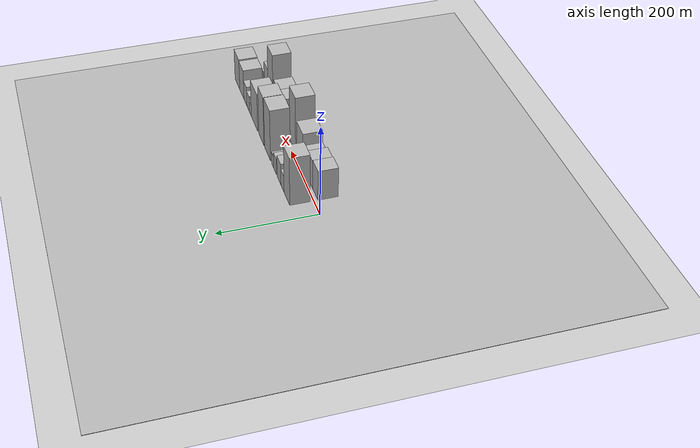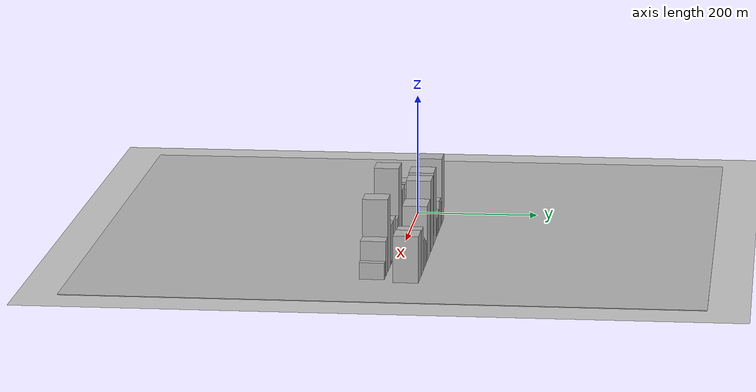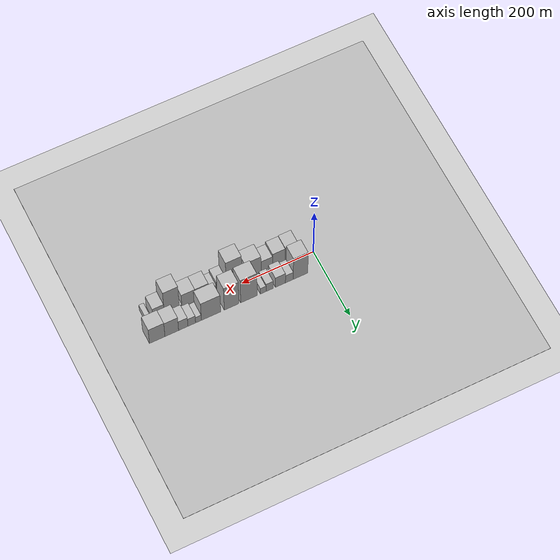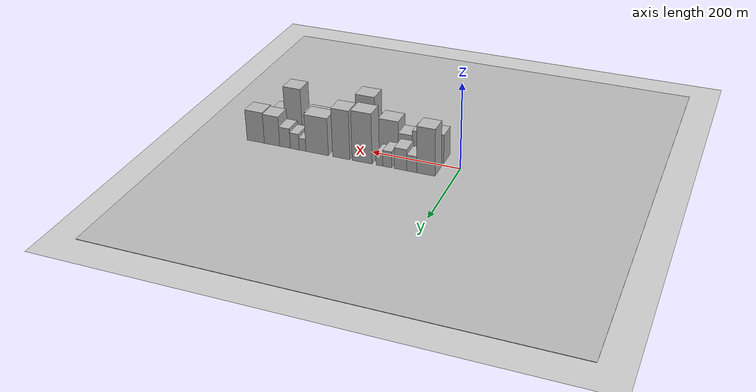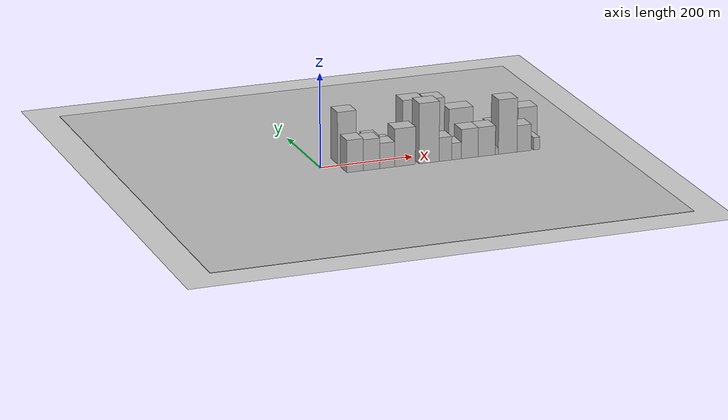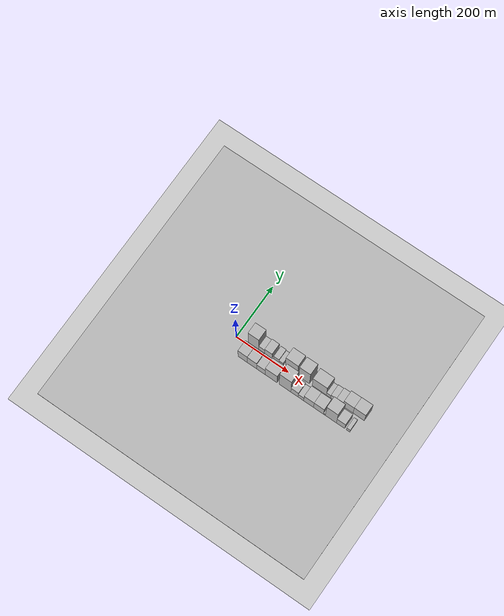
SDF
<?xml version="1.0" encoding="utf-8"?>

<sdf version="1.6">

   <world name="default">

      <gui fullscreen="0">

         <camera name="user_camera">

            <pose>-15 0 4.57585 0 0 0</pose>

            <view_controller>orbit</view_controller>

         </camera>

      </gui>

      <scene>

         <sky>

           <clouds>

             <speed>12</speed>

           </clouds>

         </sky>

         <ambient>0.4 0.4 0.4 1</ambient>

         <background>0.7 0.7 0.7 1</background>

         <shadows>1</shadows>

      </scene>

      <gravity>0 0 -9.8066</gravity>

      <magnetic_field>6e-06 2.3e-05 -4.2e-05</magnetic_field>

      <physics default="0" name="default_physics" type="ode">

         <ode>

            <solver>

               <type>quick</type>

               <iters>10</iters>

               <sor>1.0</sor>

               <use_dynamic_moi_rescaling>0</use_dynamic_moi_rescaling>

            </solver>

            <constraints>

               <cfm>0</cfm>

               <erp>0.2</erp>

               <contact_max_correcting_vel>100</contact_max_correcting_vel>

               <contact_surface_layer>0.001</contact_surface_layer>

            </constraints>

         </ode>

         <max_step_size>0.004</max_step_size>

         <real_time_factor>1</real_time_factor>

         <real_time_update_rate>250</real_time_update_rate>

      </physics>

      <light name="sun" type="directional">

         <cast_shadows>1</cast_shadows>

         <pose>0 0 10 0 0 0</pose>

         <diffuse>0.8 0.8 0.8 1</diffuse>

         <specular>0.2 0.2 0.2 1</specular>

         <attenuation>

            <range>1000</range>

            <constant>0.9</constant>

            <linear>0.01</linear>

            <quadratic>0.001</quadratic>

         </attenuation>

         <direction>-0.5 0.1 -0.9</direction>

      </light>

      <include>

         <name>ground_plane_1</name>

         <uri>model://HANNAS_ground_plane</uri>

         <pose>0 0 0  0 0 0</pose>

      </include>

      <include>

         <name>ground_plane_2</name>

         <uri>model://HANNAS_ground_plane</uri>

         <pose>100 0 0  0 0 0</pose>

      </include>

      <model name="building_1">

         <static>1</static>

         <pose frame="">60.2387 27.5000 0 0.000000 0.000000 1.570796</pose>

         <link name="link">

            <pose frame="">0 0 55.50 0 0 0</pose>

            <collision name="collision">

               <geometry>

                  <box>

                     <size>40.0000 40.4774 111.0000</size>

                  </box>

               </geometry>

               <max_contacts>10</max_contacts>

               <surface>

                  <contact>

                     <ode/>

                  </contact>

                  <bounce/>

                  <friction>

                     <torsional>

                        <ode/>

                     </torsional>

                     <ode/>

                  </friction>

               </surface>

            </collision>

            <visual name="visual">

               <cast_shadows>0</cast_shadows>

               <geometry>

                  <box>

                     <size>40.0000 40.4774 111.0000</size>

                  </box>

               </geometry>

               <material>

                  <script>

                     <uri>model://HANNAS_wall/materials/scripts</uri>

                     <uri>model://HANNAS_wall/materials/textures</uri>

                     <name>vrc/HANNAS_wall</name>

                  </script>

               </material>

            </visual>

            <self_collide>0</self_collide>

            <enable_wind>0</enable_wind>

            <kinematic>0</kinematic>

         </link>

      </model>

      <model name="building_2">

         <static>1</static>

         <pose frame="">91.4213 27.5000 0 0.000000 0.000000 1.570796</pose>

         <link name="link">

            <pose frame="">0 0 19.50 0 0 0</pose>

            <collision name="collision">

               <geometry>

                  <box>

                     <size>40.0000 21.8878 39.0000</size>

                  </box>

               </geometry>

               <max_contacts>10</max_contacts>

               <surface>

                  <contact>

                     <ode/>

                  </contact>

                  <bounce/>

                  <friction>

                     <torsional>

                        <ode/>

                     </torsional>

                     <ode/>

                  </friction>

               </surface>

            </collision>

            <visual name="visual">

               <cast_shadows>0</cast_shadows>

               <geometry>

                  <box>

                     <size>40.0000 21.8878 39.0000</size>

                  </box>

               </geometry>

               <material>

                  <script>

                     <uri>model://HANNAS_wall/materials/scripts</uri>

                     <uri>model://HANNAS_wall/materials/textures</uri>

                     <name>vrc/HANNAS_wall</name>

                  </script>

               </material>

            </visual>

            <self_collide>0</self_collide>

            <enable_wind>0</enable_wind>

            <kinematic>0</kinematic>

         </link>

      </model>

      <model name="building_3">

         <static>1</static>

         <pose frame="">116.3525 27.5000 0 0.000000 0.000000 1.570796</pose>

         <link name="link">

            <pose frame="">0 0 25.50 0 0 0</pose>

            <collision name="collision">

               <geometry>

                  <box>

                     <size>40.0000 27.9747 51.0000</size>

                  </box>

               </geometry>

               <max_contacts>10</max_contacts>

               <surface>

                  <contact>

                     <ode/>

                  </contact>

                  <bounce/>

                  <friction>

                     <torsional>

                        <ode/>

                     </torsional>

                     <ode/>

                  </friction>

               </surface>

            </collision>

            <visual name="visual">

               <cast_shadows>0</cast_shadows>

               <geometry>

                  <box>

                     <size>40.0000 27.9747 51.0000</size>

                  </box>

               </geometry>

               <material>

                  <script>

                     <uri>model://HANNAS_wall/materials/scripts</uri>

                     <uri>model://HANNAS_wall/materials/textures</uri>

                     <name>vrc/HANNAS_wall</name>

                  </script>

               </material>

            </visual>

            <self_collide>0</self_collide>

            <enable_wind>0</enable_wind>

            <kinematic>0</kinematic>

         </link>

      </model>

      <model name="building_4">

         <static>1</static>

         <pose frame="">146.3809 27.5000 0 0.000000 0.000000 1.570796</pose>

         <link name="link">

            <pose frame="">0 0 19.50 0 0 0</pose>

            <collision name="collision">

               <geometry>

                  <box>

                     <size>40.0000 20.0820 39.0000</size>

                  </box>

               </geometry>

               <max_contacts>10</max_contacts>

               <surface>

                  <contact>

                     <ode/>

                  </contact>

                  <bounce/>

                  <friction>

                     <torsional>

                        <ode/>

                     </torsional>

                     <ode/>

                  </friction>

               </surface>

            </collision>

            <visual name="visual">

               <cast_shadows>0</cast_shadows>

               <geometry>

                  <box>

                     <size>40.0000 20.0820 39.0000</size>

                  </box>

               </geometry>

               <material>

                  <script>

                     <uri>model://HANNAS_wall/materials/scripts</uri>

                     <uri>model://HANNAS_wall/materials/textures</uri>

                     <name>vrc/HANNAS_wall</name>

                  </script>

               </material>

            </visual>

            <self_collide>0</self_collide>

            <enable_wind>0</enable_wind>

            <kinematic>0</kinematic>

         </link>

      </model>

      <model name="building_5">

         <static>1</static>

         <pose frame="">164.1756 27.5000 0 0.000000 0.000000 1.570796</pose>

         <link name="link">

            <pose frame="">0 0 15.00 0 0 0</pose>

            <collision name="collision">

               <geometry>

                  <box>

                     <size>40.0000 15.5075 30.0000</size>

                  </box>

               </geometry>

               <max_contacts>10</max_contacts>

               <surface>

                  <contact>

                     <ode/>

                  </contact>

                  <bounce/>

                  <friction>

                     <torsional>

                        <ode/>

                     </torsional>

                     <ode/>

                  </friction>

               </surface>

            </collision>

            <visual name="visual">

               <cast_shadows>0</cast_shadows>

               <geometry>

                  <box>

                     <size>40.0000 15.5075 30.0000</size>

                  </box>

               </geometry>

               <material>

                  <script>

                     <uri>model://HANNAS_wall/materials/scripts</uri>

                     <uri>model://HANNAS_wall/materials/textures</uri>

                     <name>vrc/HANNAS_wall</name>

                  </script>

               </material>

            </visual>

            <self_collide>0</self_collide>

            <enable_wind>0</enable_wind>

            <kinematic>0</kinematic>

         </link>

      </model>

      <model name="building_6">

         <static>1</static>

         <pose frame="">203.7467 27.5000 0 0.000000 0.000000 1.570796</pose>

         <link name="link">

            <pose frame="">0 0 60.00 0 0 0</pose>

            <collision name="collision">

               <geometry>

                  <box>

                     <size>40.0000 45.6347 120.0000</size>

                  </box>

               </geometry>

               <max_contacts>10</max_contacts>

               <surface>

                  <contact>

                     <ode/>

                  </contact>

                  <bounce/>

                  <friction>

                     <torsional>

                        <ode/>

                     </torsional>

                     <ode/>

                  </friction>

               </surface>

            </collision>

            <visual name="visual">

               <cast_shadows>0</cast_shadows>

               <geometry>

                  <box>

                     <size>40.0000 45.6347 120.0000</size>

                  </box>

               </geometry>

               <material>

                  <script>

                     <uri>model://HANNAS_wall/materials/scripts</uri>

                     <uri>model://HANNAS_wall/materials/textures</uri>

                     <name>vrc/HANNAS_wall</name>

                  </script>

               </material>

            </visual>

            <self_collide>0</self_collide>

            <enable_wind>0</enable_wind>

            <kinematic>0</kinematic>

         </link>

      </model>

      <model name="building_7">

         <static>1</static>

         <pose frame="">251.6708 27.5000 0 0.000000 0.000000 1.570796</pose>

         <link name="link">

            <pose frame="">0 0 58.50 0 0 0</pose>

            <collision name="collision">

               <geometry>

                  <box>

                     <size>40.0000 40.2136 117.0000</size>

                  </box>

               </geometry>

               <max_contacts>10</max_contacts>

               <surface>

                  <contact>

                     <ode/>

                  </contact>

                  <bounce/>

                  <friction>

                     <torsional>

                        <ode/>

                     </torsional>

                     <ode/>

                  </friction>

               </surface>

            </collision>

            <visual name="visual">

               <cast_shadows>0</cast_shadows>

               <geometry>

                  <box>

                     <size>40.0000 40.2136 117.0000</size>

                  </box>

               </geometry>

               <material>

                  <script>

                     <uri>model://HANNAS_wall/materials/scripts</uri>

                     <uri>model://HANNAS_wall/materials/textures</uri>

                     <name>vrc/HANNAS_wall</name>

                  </script>

               </material>

            </visual>

            <self_collide>0</self_collide>

            <enable_wind>0</enable_wind>

            <kinematic>0</kinematic>

         </link>

      </model>

      <model name="building_8">

         <static>1</static>

         <pose frame="">308.2636 27.5000 0 0.000000 0.000000 1.570796</pose>

         <link name="link">

            <pose frame="">0 0 45.00 0 0 0</pose>

            <collision name="collision">

               <geometry>

                  <box>

                     <size>40.0000 52.9719 90.0000</size>

                  </box>

               </geometry>

               <max_contacts>10</max_contacts>

               <surface>

                  <contact>

                     <ode/>

                  </contact>

                  <bounce/>

                  <friction>

                     <torsional>

                        <ode/>

                     </torsional>

                     <ode/>

                  </friction>

               </surface>

            </collision>

            <visual name="visual">

               <cast_shadows>0</cast_shadows>

               <geometry>

                  <box>

                     <size>40.0000 52.9719 90.0000</size>

                  </box>

               </geometry>

               <material>

                  <script>

                     <uri>model://HANNAS_wall/materials/scripts</uri>

                     <uri>model://HANNAS_wall/materials/textures</uri>

                     <name>vrc/HANNAS_wall</name>

                  </script>

               </material>

            </visual>

            <self_collide>0</self_collide>

            <enable_wind>0</enable_wind>

            <kinematic>0</kinematic>

         </link>

      </model>

      <model name="building_9">

         <static>1</static>

         <pose frame="">342.7363 27.5000 0 0.000000 0.000000 1.570796</pose>

         <link name="link">

            <pose frame="">0 0 15.00 0 0 0</pose>

            <collision name="collision">

               <geometry>

                  <box>

                     <size>40.0000 15.9735 30.0000</size>

                  </box>

               </geometry>

               <max_contacts>10</max_contacts>

               <surface>

                  <contact>

                     <ode/>

                  </contact>

                  <bounce/>

                  <friction>

                     <torsional>

                        <ode/>

                     </torsional>

                     <ode/>

                  </friction>

               </surface>

            </collision>

            <visual name="visual">

               <cast_shadows>0</cast_shadows>

               <geometry>

                  <box>

                     <size>40.0000 15.9735 30.0000</size>

                  </box>

               </geometry>

               <material>

                  <script>

                     <uri>model://HANNAS_wall/materials/scripts</uri>

                     <uri>model://HANNAS_wall/materials/textures</uri>

                     <name>vrc/HANNAS_wall</name>

                  </script>

               </material>

            </visual>

            <self_collide>0</self_collide>

            <enable_wind>0</enable_wind>

            <kinematic>0</kinematic>

         </link>

      </model>

      <model name="building_10">

         <static>1</static>

         <pose frame="">361.2020 27.5000 0 0.000000 0.000000 1.570796</pose>

         <link name="link">

            <pose frame="">0 0 19.50 0 0 0</pose>

            <collision name="collision">

               <geometry>

                  <box>

                     <size>40.0000 20.9579 39.0000</size>

                  </box>

               </geometry>

               <max_contacts>10</max_contacts>

               <surface>

                  <contact>

                     <ode/>

                  </contact>

                  <bounce/>

                  <friction>

                     <torsional>

                        <ode/>

                     </torsional>

                     <ode/>

                  </friction>

               </surface>

            </collision>

            <visual name="visual">

               <cast_shadows>0</cast_shadows>

               <geometry>

                  <box>

                     <size>40.0000 20.9579 39.0000</size>

                  </box>

               </geometry>

               <material>

                  <script>

                     <uri>model://HANNAS_wall/materials/scripts</uri>

                     <uri>model://HANNAS_wall/materials/textures</uri>

                     <name>vrc/HANNAS_wall</name>

                  </script>

               </material>

            </visual>

            <self_collide>0</self_collide>

            <enable_wind>0</enable_wind>

            <kinematic>0</kinematic>

         </link>

      </model>

      <model name="building_11">

         <static>1</static>

         <pose frame="">384.4476 27.5000 0 0.000000 0.000000 1.570796</pose>

         <link name="link">

            <pose frame="">0 0 24.00 0 0 0</pose>

            <collision name="collision">

               <geometry>

                  <box>

                     <size>40.0000 25.5332 48.0000</size>

                  </box>

               </geometry>

               <max_contacts>10</max_contacts>

               <surface>

                  <contact>

                     <ode/>

                  </contact>

                  <bounce/>

                  <friction>

                     <torsional>

                        <ode/>

                     </torsional>

                     <ode/>

                  </friction>

               </surface>

            </collision>

            <visual name="visual">

               <cast_shadows>0</cast_shadows>

               <geometry>

                  <box>

                     <size>40.0000 25.5332 48.0000</size>

                  </box>

               </geometry>

               <material>

                  <script>

                     <uri>model://HANNAS_wall/materials/scripts</uri>

                     <uri>model://HANNAS_wall/materials/textures</uri>

                     <name>vrc/HANNAS_wall</name>

                  </script>

               </material>

            </visual>

            <self_collide>0</self_collide>

            <enable_wind>0</enable_wind>

            <kinematic>0</kinematic>

         </link>

      </model>

      <model name="building_12">

         <static>1</static>

         <pose frame="">415.8164 27.5000 0 0.000000 0.000000 1.570796</pose>

         <link name="link">

            <pose frame="">0 0 36.00 0 0 0</pose>

            <collision name="collision">

               <geometry>

                  <box>

                     <size>40.0000 37.2044 72.0000</size>

                  </box>

               </geometry>

               <max_contacts>10</max_contacts>

               <surface>

                  <contact>

                     <ode/>

                  </contact>

                  <bounce/>

                  <friction>

                     <torsional>

                        <ode/>

                     </torsional>

                     <ode/>

                  </friction>

               </surface>

            </collision>

            <visual name="visual">

               <cast_shadows>0</cast_shadows>

               <geometry>

                  <box>

                     <size>40.0000 37.2044 72.0000</size>

                  </box>

               </geometry>

               <material>

                  <script>

                     <uri>model://HANNAS_wall/materials/scripts</uri>

                     <uri>model://HANNAS_wall/materials/textures</uri>

                     <name>vrc/HANNAS_wall</name>

                  </script>

               </material>

            </visual>

            <self_collide>0</self_collide>

            <enable_wind>0</enable_wind>

            <kinematic>0</kinematic>

         </link>

      </model>

      <model name="building_13">

         <static>1</static>

         <pose frame="">455.4938 27.5000 0 0.000000 0.000000 1.570796</pose>

         <link name="link">

            <pose frame="">0 0 37.50 0 0 0</pose>

            <collision name="collision">

               <geometry>

                  <box>

                     <size>40.0000 42.1505 75.0000</size>

                  </box>

               </geometry>

               <max_contacts>10</max_contacts>

               <surface>

                  <contact>

                     <ode/>

                  </contact>

                  <bounce/>

                  <friction>

                     <torsional>

                        <ode/>

                     </torsional>

                     <ode/>

                  </friction>

               </surface>

            </collision>

            <visual name="visual">

               <cast_shadows>0</cast_shadows>

               <geometry>

                  <box>

                     <size>40.0000 42.1505 75.0000</size>

                  </box>

               </geometry>

               <material>

                  <script>

                     <uri>model://HANNAS_wall/materials/scripts</uri>

                     <uri>model://HANNAS_wall/materials/textures</uri>

                     <name>vrc/HANNAS_wall</name>

                  </script>

               </material>

            </visual>

            <self_collide>0</self_collide>

            <enable_wind>0</enable_wind>

            <kinematic>0</kinematic>

         </link>

      </model>

      <model name="building_14">

         <static>1</static>

         <pose frame="">57.6656 -27.5000 0 0.000000 0.000000 1.570796</pose>

         <link name="link">

            <pose frame="">0 0 34.50 0 0 0</pose>

            <collision name="collision">

               <geometry>

                  <box>

                     <size>40.0000 35.3312 69.0000</size>

                  </box>

               </geometry>

               <max_contacts>10</max_contacts>

               <surface>

                  <contact>

                     <ode/>

                  </contact>

                  <bounce/>

                  <friction>

                     <torsional>

                        <ode/>

                     </torsional>

                     <ode/>

                  </friction>

               </surface>

            </collision>

            <visual name="visual">

               <cast_shadows>0</cast_shadows>

               <geometry>

                  <box>

                     <size>40.0000 35.3312 69.0000</size>

                  </box>

               </geometry>

               <material>

                  <script>

                     <uri>model://HANNAS_wall/materials/scripts</uri>

                     <uri>model://HANNAS_wall/materials/textures</uri>

                     <name>vrc/HANNAS_wall</name>

                  </script>

               </material>

            </visual>

            <self_collide>0</self_collide>

            <enable_wind>0</enable_wind>

            <kinematic>0</kinematic>

         </link>

      </model>

      <model name="building_15">

         <static>1</static>

         <pose frame="">92.9802 -27.5000 0 0.000000 0.000000 1.570796</pose>

         <link name="link">

            <pose frame="">0 0 33.00 0 0 0</pose>

            <collision name="collision">

               <geometry>

                  <box>

                     <size>40.0000 35.2980 66.0000</size>

                  </box>

               </geometry>

               <max_contacts>10</max_contacts>

               <surface>

                  <contact>

                     <ode/>

                  </contact>

                  <bounce/>

                  <friction>

                     <torsional>

                        <ode/>

                     </torsional>

                     <ode/>

                  </friction>

               </surface>

            </collision>

            <visual name="visual">

               <cast_shadows>0</cast_shadows>

               <geometry>

                  <box>

                     <size>40.0000 35.2980 66.0000</size>

                  </box>

               </geometry>

               <material>

                  <script>

                     <uri>model://HANNAS_wall/materials/scripts</uri>

                     <uri>model://HANNAS_wall/materials/textures</uri>

                     <name>vrc/HANNAS_wall</name>

                  </script>

               </material>

            </visual>

            <self_collide>0</self_collide>

            <enable_wind>0</enable_wind>

            <kinematic>0</kinematic>

         </link>

      </model>

      <model name="building_16">

         <static>1</static>

         <pose frame="">126.6633 -27.5000 0 0.000000 0.000000 1.570796</pose>

         <link name="link">

            <pose frame="">0 0 27.00 0 0 0</pose>

            <collision name="collision">

               <geometry>

                  <box>

                     <size>40.0000 32.0682 54.0000</size>

                  </box>

               </geometry>

               <max_contacts>10</max_contacts>

               <surface>

                  <contact>

                     <ode/>

                  </contact>

                  <bounce/>

                  <friction>

                     <torsional>

                        <ode/>

                     </torsional>

                     <ode/>

                  </friction>

               </surface>

            </collision>

            <visual name="visual">

               <cast_shadows>0</cast_shadows>

               <geometry>

                  <box>

                     <size>40.0000 32.0682 54.0000</size>

                  </box>

               </geometry>

               <material>

                  <script>

                     <uri>model://HANNAS_wall/materials/scripts</uri>

                     <uri>model://HANNAS_wall/materials/textures</uri>

                     <name>vrc/HANNAS_wall</name>

                  </script>

               </material>

            </visual>

            <self_collide>0</self_collide>

            <enable_wind>0</enable_wind>

            <kinematic>0</kinematic>

         </link>

      </model>

      <model name="building_17">

         <static>1</static>

         <pose frame="">165.2017 -27.5000 0 0.000000 0.000000 1.570796</pose>

         <link name="link">

            <pose frame="">0 0 40.50 0 0 0</pose>

            <collision name="collision">

               <geometry>

                  <box>

                     <size>40.0000 45.0086 81.0000</size>

                  </box>

               </geometry>

               <max_contacts>10</max_contacts>

               <surface>

                  <contact>

                     <ode/>

                  </contact>

                  <bounce/>

                  <friction>

                     <torsional>

                        <ode/>

                     </torsional>

                     <ode/>

                  </friction>

               </surface>

            </collision>

            <visual name="visual">

               <cast_shadows>0</cast_shadows>

               <geometry>

                  <box>

                     <size>40.0000 45.0086 81.0000</size>

                  </box>

               </geometry>

               <material>

                  <script>

                     <uri>model://HANNAS_wall/materials/scripts</uri>

                     <uri>model://HANNAS_wall/materials/textures</uri>

                     <name>vrc/HANNAS_wall</name>

                  </script>

               </material>

            </visual>

            <self_collide>0</self_collide>

            <enable_wind>0</enable_wind>

            <kinematic>0</kinematic>

         </link>

      </model>

      <model name="building_18">

         <static>1</static>

         <pose frame="">217.6015 -27.5000 0 0.000000 0.000000 1.570796</pose>

         <link name="link">

            <pose frame="">0 0 64.50 0 0 0</pose>

            <collision name="collision">

               <geometry>

                  <box>

                     <size>40.0000 43.7912 129.0000</size>

                  </box>

               </geometry>

               <max_contacts>10</max_contacts>

               <surface>

                  <contact>

                     <ode/>

                  </contact>

                  <bounce/>

                  <friction>

                     <torsional>

                        <ode/>

                     </torsional>

                     <ode/>

                  </friction>

               </surface>

            </collision>

            <visual name="visual">

               <cast_shadows>0</cast_shadows>

               <geometry>

                  <box>

                     <size>40.0000 43.7912 129.0000</size>

                  </box>

               </geometry>

               <material>

                  <script>

                     <uri>model://HANNAS_wall/materials/scripts</uri>

                     <uri>model://HANNAS_wall/materials/textures</uri>

                     <name>vrc/HANNAS_wall</name>

                  </script>

               </material>

            </visual>

            <self_collide>0</self_collide>

            <enable_wind>0</enable_wind>

            <kinematic>0</kinematic>

         </link>

      </model>

      <model name="building_19">

         <static>1</static>

         <pose frame="">253.1836 -27.5000 0 0.000000 0.000000 1.570796</pose>

         <link name="link">

            <pose frame="">0 0 25.50 0 0 0</pose>

            <collision name="collision">

               <geometry>

                  <box>

                     <size>40.0000 27.3729 51.0000</size>

                  </box>

               </geometry>

               <max_contacts>10</max_contacts>

               <surface>

                  <contact>

                     <ode/>

                  </contact>

                  <bounce/>

                  <friction>

                     <torsional>

                        <ode/>

                     </torsional>

                     <ode/>

                  </friction>

               </surface>

            </collision>

            <visual name="visual">

               <cast_shadows>0</cast_shadows>

               <geometry>

                  <box>

                     <size>40.0000 27.3729 51.0000</size>

                  </box>

               </geometry>

               <material>

                  <script>

                     <uri>model://HANNAS_wall/materials/scripts</uri>

                     <uri>model://HANNAS_wall/materials/textures</uri>

                     <name>vrc/HANNAS_wall</name>

                  </script>

               </material>

            </visual>

            <self_collide>0</self_collide>

            <enable_wind>0</enable_wind>

            <kinematic>0</kinematic>

         </link>

      </model>

      <model name="building_20">

         <static>1</static>

         <pose frame="">277.2767 -27.5000 0 0.000000 0.000000 1.570796</pose>

         <link name="link">

            <pose frame="">0 0 18.00 0 0 0</pose>

            <collision name="collision">

               <geometry>

                  <box>

                     <size>40.0000 20.8134 36.0000</size>

                  </box>

               </geometry>

               <max_contacts>10</max_contacts>

               <surface>

                  <contact>

                     <ode/>

                  </contact>

                  <bounce/>

                  <friction>

                     <torsional>

                        <ode/>

                     </torsional>

                     <ode/>

                  </friction>

               </surface>

            </collision>

            <visual name="visual">

               <cast_shadows>0</cast_shadows>

               <geometry>

                  <box>

                     <size>40.0000 20.8134 36.0000</size>

                  </box>

               </geometry>

               <material>

                  <script>

                     <uri>model://HANNAS_wall/materials/scripts</uri>

                     <uri>model://HANNAS_wall/materials/textures</uri>

                     <name>vrc/HANNAS_wall</name>

                  </script>

               </material>

            </visual>

            <self_collide>0</self_collide>

            <enable_wind>0</enable_wind>

            <kinematic>0</kinematic>

         </link>

      </model>

      <model name="building_21">

         <static>1</static>

         <pose frame="">306.1324 -27.5000 0 0.000000 0.000000 1.570796</pose>

         <link name="link">

            <pose frame="">0 0 31.50 0 0 0</pose>

            <collision name="collision">

               <geometry>

                  <box>

                     <size>40.0000 36.8979 63.0000</size>

                  </box>

               </geometry>

               <max_contacts>10</max_contacts>

               <surface>

                  <contact>

                     <ode/>

                  </contact>

                  <bounce/>

                  <friction>

                     <torsional>

                        <ode/>

                     </torsional>

                     <ode/>

                  </friction>

               </surface>

            </collision>

            <visual name="visual">

               <cast_shadows>0</cast_shadows>

               <geometry>

                  <box>

                     <size>40.0000 36.8979 63.0000</size>

                  </box>

               </geometry>

               <material>

                  <script>

                     <uri>model://HANNAS_wall/materials/scripts</uri>

                     <uri>model://HANNAS_wall/materials/textures</uri>

                     <name>vrc/HANNAS_wall</name>

                  </script>

               </material>

            </visual>

            <self_collide>0</self_collide>

            <enable_wind>0</enable_wind>

            <kinematic>0</kinematic>

         </link>

      </model>

      <model name="building_22">

         <static>1</static>

         <pose frame="">343.2307 -27.5000 0 0.000000 0.000000 1.570796</pose>

         <link name="link">

            <pose frame="">0 0 31.50 0 0 0</pose>

            <collision name="collision">

               <geometry>

                  <box>

                     <size>40.0000 37.2988 63.0000</size>

                  </box>

               </geometry>

               <max_contacts>10</max_contacts>

               <surface>

                  <contact>

                     <ode/>

                  </contact>

                  <bounce/>

                  <friction>

                     <torsional>

                        <ode/>

                     </torsional>

                     <ode/>

                  </friction>

               </surface>

            </collision>

            <visual name="visual">

               <cast_shadows>0</cast_shadows>

               <geometry>

                  <box>

                     <size>40.0000 37.2988 63.0000</size>

                  </box>

               </geometry>

               <material>

                  <script>

                     <uri>model://HANNAS_wall/materials/scripts</uri>

                     <uri>model://HANNAS_wall/materials/textures</uri>

                     <name>vrc/HANNAS_wall</name>

                  </script>

               </material>

            </visual>

            <self_collide>0</self_collide>

            <enable_wind>0</enable_wind>

            <kinematic>0</kinematic>

         </link>

      </model>

      <model name="building_23">

         <static>1</static>

         <pose frame="">365.3004 -27.5000 0 0.000000 0.000000 1.570796</pose>

         <link name="link">

            <pose frame="">0 0 7.50 0 0 0</pose>

            <collision name="collision">

               <geometry>

                  <box>

                     <size>40.0000 6.8405 15.0000</size>

                  </box>

               </geometry>

               <max_contacts>10</max_contacts>

               <surface>

                  <contact>

                     <ode/>

                  </contact>

                  <bounce/>

                  <friction>

                     <torsional>

                        <ode/>

                     </torsional>

                     <ode/>

                  </friction>

               </surface>

            </collision>

            <visual name="visual">

               <cast_shadows>0</cast_shadows>

               <geometry>

                  <box>

                     <size>40.0000 6.8405 15.0000</size>

                  </box>

               </geometry>

               <material>

                  <script>

                     <uri>model://HANNAS_wall/materials/scripts</uri>

                     <uri>model://HANNAS_wall/materials/textures</uri>

                     <name>vrc/HANNAS_wall</name>

                  </script>

               </material>

            </visual>

            <self_collide>0</self_collide>

            <enable_wind>0</enable_wind>

            <kinematic>0</kinematic>

         </link>

      </model>

      <model name="building_24">

         <static>1</static>

         <pose frame="">389.2924 -27.5000 0 0.000000 0.000000 1.570796</pose>

         <link name="link">

            <pose frame="">0 0 58.50 0 0 0</pose>

            <collision name="collision">

               <geometry>

                  <box>

                     <size>40.0000 41.1435 117.0000</size>

                  </box>

               </geometry>

               <max_contacts>10</max_contacts>

               <surface>

                  <contact>

                     <ode/>

                  </contact>

                  <bounce/>

                  <friction>

                     <torsional>

                        <ode/>

                     </torsional>

                     <ode/>

                  </friction>

               </surface>

            </collision>

            <visual name="visual">

               <cast_shadows>0</cast_shadows>

               <geometry>

                  <box>

                     <size>40.0000 41.1435 117.0000</size>

                  </box>

               </geometry>

               <material>

                  <script>

                     <uri>model://HANNAS_wall/materials/scripts</uri>

                     <uri>model://HANNAS_wall/materials/textures</uri>

                     <name>vrc/HANNAS_wall</name>

                  </script>

               </material>

            </visual>

            <self_collide>0</self_collide>

            <enable_wind>0</enable_wind>

            <kinematic>0</kinematic>

         </link>

      </model>

      <model name="building_25">

         <static>1</static>

         <pose frame="">425.3748 -27.5000 0 0.000000 0.000000 1.570796</pose>

         <link name="link">

            <pose frame="">0 0 28.50 0 0 0</pose>

            <collision name="collision">

               <geometry>

                  <box>

                     <size>40.0000 31.0214 57.0000</size>

                  </box>

               </geometry>

               <max_contacts>10</max_contacts>

               <surface>

                  <contact>

                     <ode/>

                  </contact>

                  <bounce/>

                  <friction>

                     <torsional>

                        <ode/>

                     </torsional>

                     <ode/>

                  </friction>

               </surface>

            </collision>

            <visual name="visual">

               <cast_shadows>0</cast_shadows>

               <geometry>

                  <box>

                     <size>40.0000 31.0214 57.0000</size>

                  </box>

               </geometry>

               <material>

                  <script>

                     <uri>model://HANNAS_wall/materials/scripts</uri>

                     <uri>model://HANNAS_wall/materials/textures</uri>

                     <name>vrc/HANNAS_wall</name>

                  </script>

               </material>

            </visual>

            <self_collide>0</self_collide>

            <enable_wind>0</enable_wind>

            <kinematic>0</kinematic>

         </link>

      </model>

      <model name="building_26">

         <static>1</static>

         <pose frame="">453.4260 -27.5000 0 0.000000 0.000000 1.570796</pose>

         <link name="link">

            <pose frame="">0 0 13.50 0 0 0</pose>

            <collision name="collision">

               <geometry>

                  <box>

                     <size>40.0000 13.0811 27.0000</size>

                  </box>

               </geometry>

               <max_contacts>10</max_contacts>

               <surface>

                  <contact>

                     <ode/>

                  </contact>

                  <bounce/>

                  <friction>

                     <torsional>

                        <ode/>

                     </torsional>

                     <ode/>

                  </friction>

               </surface>

            </collision>

            <visual name="visual">

               <cast_shadows>0</cast_shadows>

               <geometry>

                  <box>

                     <size>40.0000 13.0811 27.0000</size>

                  </box>

               </geometry>

               <material>

                  <script>

                     <uri>model://HANNAS_wall/materials/scripts</uri>

                     <uri>model://HANNAS_wall/materials/textures</uri>

                     <name>vrc/HANNAS_wall</name>

                  </script>

               </material>

            </visual>

            <self_collide>0</self_collide>

            <enable_wind>0</enable_wind>

            <kinematic>0</kinematic>

         </link>

      </model>

   </world>

</sdf>

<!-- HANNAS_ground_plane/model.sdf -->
<sdf version="1.4">
<model name="HANNAS_ground_plane">
  <static>true</static>
    <link name="link">
      <collision name="collision">
        <geometry>
          <plane>
            <normal>0 0 1</normal>
            <size>1000 1000</size>
          </plane>
        </geometry>
        <surface>
          <friction>
            <ode>
              <mu>100</mu>
              <mu2>50</mu2>
            </ode>
          </friction>
        </surface>
      </collision>
      <visual name="visual">
        <cast_shadows>false</cast_shadows>
        <geometry>
          <plane>
            <normal>0 0 1</normal>
            <size>1000 1000</size>
          </plane>
        </geometry>
        <material>
          <script>
            <uri>model://HANNAS_ground_plane/materials/scripts/HANNAS_ground_plane.material</uri>
	    <uri>model://HANNAS_ground_plane/materials/textures</uri>
            <name>HANNASGroundPlane/Image</name>
          </script>
        </material>
      </visual>
    </link>
  </model>
</sdf>
